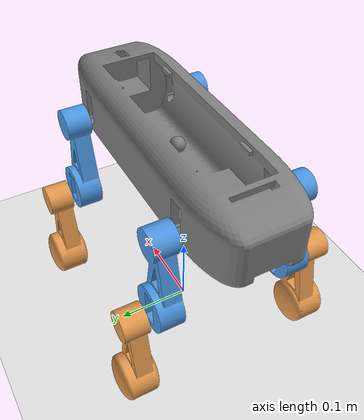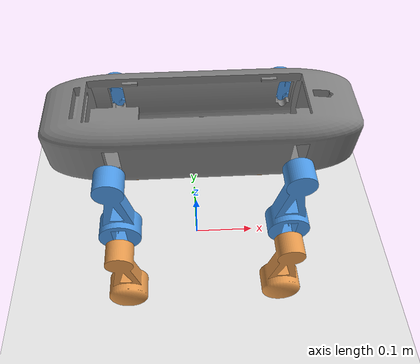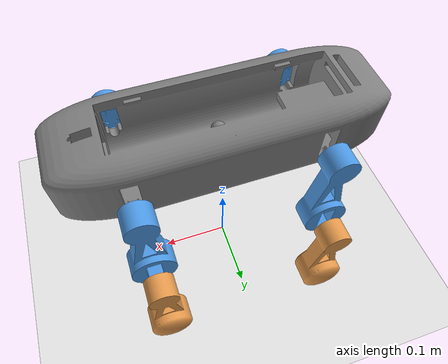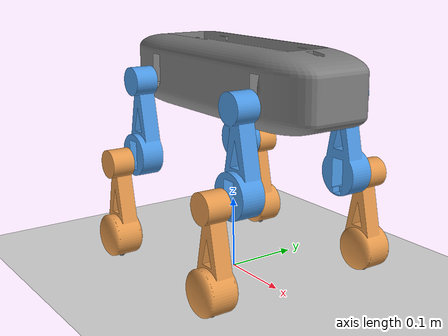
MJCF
<?xml version="1.0" ?>
<mujoco model="robot_dog">
  <option timestep="0.001" iterations="50" solver="Newton"/>
  <compiler angle="degree" meshdir="."/>

  <asset>
    <mesh name="torso_mesh" file="torso.stl" scale="0.001 0.001 0.001"/>
    <mesh name="upper_leg_mesh" file="upper_leg.stl" scale="0.001 0.001 0.001"/>
    <mesh name="lower_leg_mesh" file="lower_leg.stl" scale="0.001 0.001 0.001"/>
    <!-- Gespiegelde versies (negatieve y-schaal) voor de poten aan de +y-kant, zodat het onderbeen ook daar aan de buitenkant zit -->
    <mesh name="upper_leg_mesh_m" file="upper_leg.stl" scale="0.001 -0.001 0.001"/>
    <mesh name="lower_leg_mesh_m" file="lower_leg.stl" scale="0.001 -0.001 0.001"/>
  </asset>

  <default>
    <default class="leg">
      <joint type="hinge" axis="0 1 0" range="-90 90" damping="0.4" limited="true"/>

    </default>
  </default>

  <worldbody>
    <light diffuse=".6 .6 .6" pos="0 0 3" dir="0 0 -1"/>
    <geom name="floor" type="plane" size="5 5 0.1" rgba="0.9 0.9 0.9 1"/>

    <body name="torso" pos="0 0 0.02">
      <joint type="free"/>
      <geom type="mesh" mesh="torso_mesh" rgba="0.5 0.5 0.5 1" mass="0.5" contype="0" conaffinity="0"/>
      <site name="torso_center" pos="0.0085 0.0055 0.2529" size="0.01"/>

      <!-- Front-left -->
      <body name="fl_upper_leg" pos="0.129 -0.081 0.260">
        <joint name="fl_hip" class="leg" pos="0 0 0"/>
        <geom type="mesh" mesh="upper_leg_mesh" pos="-0.129 0.081 -0.260" rgba="0.3 0.6 0.9 1" class="leg" mass="0.05" contype="0" conaffinity="0"/>
        <body name="fl_lower_leg" pos="-0.0005 -0.015 -0.135">
          <site name="fl_foot" pos="-0.0005 -0.025 -0.135" size="0.005"/>
          <joint name="fl_knee" class="leg" pos="0 0 0" range="-90 0"/>
          <geom type="mesh" mesh="lower_leg_mesh" pos="-0.1285 0.096 -0.125" rgba="0.9 0.6 0.3 1" class="leg" mass="0.03" solref="0.02 1.5" solimp="0.9 0.95 0.01"/>
        </body>
      </body>

      <!-- Front-right -->
      <body name="fr_upper_leg" pos="0.129 0.092 0.260">
        <joint name="fr_hip" class="leg" pos="0 0 0"/>
        <geom type="mesh" mesh="upper_leg_mesh_m" pos="-0.129 -0.081 -0.260" rgba="0.3 0.6 0.9 1" class="leg" mass="0.05" contype="0" conaffinity="0"/>
        <body name="fr_lower_leg" pos="-0.0005 0.015 -0.135">
          <site name="fr_foot" pos="-0.0005 0.025 -0.135" size="0.005"/>
          <joint name="fr_knee" class="leg" pos="0 0 0" range="-90 0"/>
          <geom type="mesh" mesh="lower_leg_mesh_m" pos="-0.1285 -0.096 -0.125" rgba="0.9 0.6 0.3 1" class="leg" mass="0.03" solref="0.02 1.5" solimp="0.9 0.95 0.01"/>
        </body>
      </body>

      <!-- Rear-left -->
      <body name="rl_upper_leg" pos="-0.112 -0.081 0.260">
        <joint name="rl_hip" class="leg" pos="0 0 0"/>
        <geom type="mesh" mesh="upper_leg_mesh" pos="-0.129 0.081 -0.260" rgba="0.3 0.6 0.9 1" class="leg" mass="0.05" contype="0" conaffinity="0"/>
        <body name="rl_lower_leg" pos="-0.0005 -0.015 -0.135">
          <site name="rl_foot" pos="-0.0005 -0.025 -0.135" size="0.005"/>
          <joint name="rl_knee" class="leg" pos="0 0 0" range="-90 0"/>
          <geom type="mesh" mesh="lower_leg_mesh" pos="-0.1285 0.096 -0.125" rgba="0.9 0.6 0.3 1" class="leg" mass="0.03" solref="0.02 1.5" solimp="0.9 0.95 0.01"/>
        </body>
      </body>

      <!-- Rear-right -->
      <body name="rr_upper_leg" pos="-0.112 0.092 0.260">
        <joint name="rr_hip" class="leg" pos="0 0 0"/>
        <geom type="mesh" mesh="upper_leg_mesh_m" pos="-0.129 -0.081 -0.260" rgba="0.3 0.6 0.9 1" class="leg" mass="0.05" contype="0" conaffinity="0"/>
        <body name="rr_lower_leg" pos="-0.0005 0.015 -0.135">
          <site name="rr_foot" pos="-0.0005 0.025 -0.135" size="0.005"/>
          <joint name="rr_knee" class="leg" pos="0 0 0" range="-90 0"/>
          <geom type="mesh" mesh="lower_leg_mesh_m" pos="-0.1285 -0.096 -0.125" rgba="0.9 0.6 0.3 1" class="leg" mass="0.03" solref="0.02 1.5" solimp="0.9 0.95 0.01"/>
        </body>
      </body>

    </body>
  </worldbody>

  <sensor>
    <accelerometer name="torso_accel" site="torso_center"/>
    <gyro name="torso_gyro" site="torso_center"/>
    <framelinvel name="fl_foot_vel" objtype="site" objname="fl_foot"/>
    <framelinvel name="fr_foot_vel" objtype="site" objname="fr_foot"/>
    <framelinvel name="rl_foot_vel" objtype="site" objname="rl_foot"/>
    <framelinvel name="rr_foot_vel" objtype="site" objname="rr_foot"/>
  </sensor>

  <actuator>
    <position name="fl_hip_motor" joint="fl_hip" kp="8" kv="0.3" forcerange="-1.08 1.08" ctrlrange="-1.5708 1.5708" ctrllimited="true"/>
    <position name="fl_knee_motor" joint="fl_knee" kp="8" kv="0.3" forcerange="-1.08 1.08" ctrlrange="-1.5708 0" ctrllimited="true"/>
    <position name="fr_hip_motor" joint="fr_hip" kp="8" kv="0.3" forcerange="-1.08 1.08" ctrlrange="-1.5708 1.5708" ctrllimited="true"/>
    <position name="fr_knee_motor" joint="fr_knee" kp="8" kv="0.3" forcerange="-1.08 1.08" ctrlrange="-1.5708 0" ctrllimited="true"/>
    <position name="rl_hip_motor" joint="rl_hip" kp="8" kv="0.3" forcerange="-1.08 1.08" ctrlrange="-1.5708 1.5708" ctrllimited="true"/>
    <position name="rl_knee_motor" joint="rl_knee" kp="8" kv="0.3" forcerange="-1.08 1.08" ctrlrange="-1.5708 0" ctrllimited="true"/>
    <position name="rr_hip_motor" joint="rr_hip" kp="8" kv="0.3" forcerange="-1.08 1.08" ctrlrange="-1.5708 1.5708" ctrllimited="true"/>
    <position name="rr_knee_motor" joint="rr_knee" kp="8" kv="0.3" forcerange="-1.08 1.08" ctrlrange="-1.5708 0" ctrllimited="true"/>
  </actuator>

  <keyframe>
    <key name="home"
         qpos="0 0 0 1 0 0 0  0.5236 -1.0472  0.5236 -1.0472  0.5236 -1.0472  0.5236 -1.0472"
         ctrl="0.5236 -1.0472  0.5236 -1.0472  0.5236 -1.0472  0.5236 -1.0472"/>
  </keyframe>
</mujoco>
